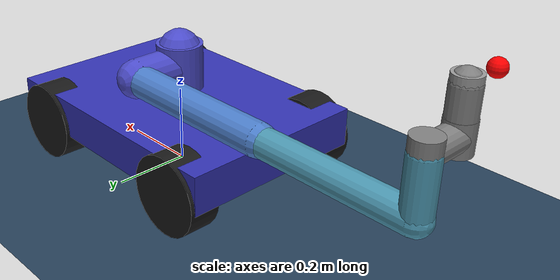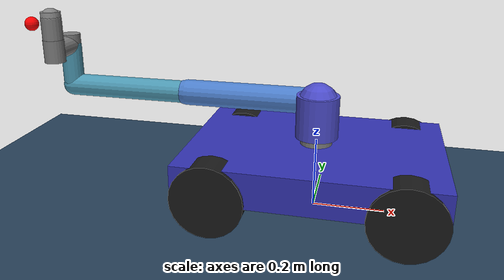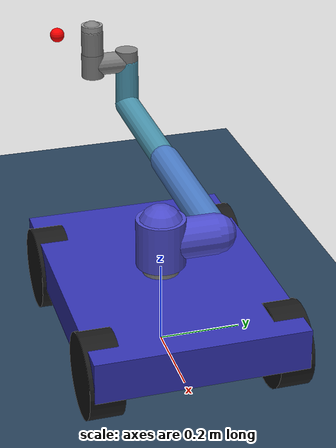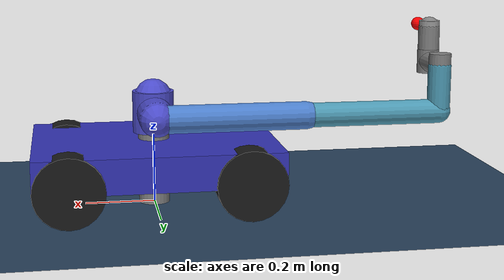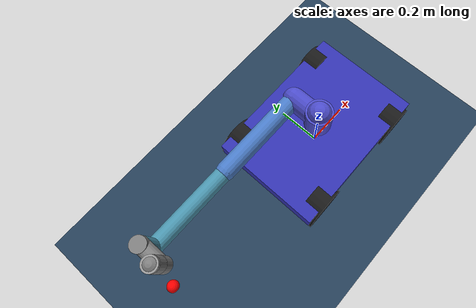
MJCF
<mujoco model="wheeled_ur5e">
  <compiler angle="radian"/>

  <option integrator="implicitfast"/>

  <visual>
    <global azimuth="120" elevation="-20"/>
    <headlight ambient="0.3 0.3 0.3" diffuse="0.6 0.6 0.6" specular="0 0 0"/>
    <map force="0.1" zfar="30"/>
    <rgba haze="0.15 0.25 0.35 1"/>
  </visual>

  <default>
    <joint limited="true"/>
    <geom contype="0" conaffinity="0" condim="1" solref="0.008"/>
    <general ctrllimited="true" biastype="affine" gainprm="400" biasprm="0 -400 -40"/>
  </default>

  <asset>
    <texture type="skybox" colorspace="auto" builtin="gradient" rgb1="0.3 0.5 0.7" rgb2="0 0 0" width="512" height="3072"/>
    <texture type="2d" colorspace="auto" name="groundplane" builtin="checker" mark="edge" rgb1="0.2 0.3 0.4" rgb2="0.1 0.2 0.3" markrgb="0.8 0.8 0.8" width="300" height="300"/>
    <material name="groundplane" texture="groundplane" texuniform="true" texrepeat="5 5" reflectance="0.2"/>
  </asset>

  <worldbody>
    <geom name="floor" size="0 0 0.05" type="plane" material="groundplane"/>
    <light pos="0 0 3.5" dir="0 0 -1" type="directional" diffuse="0.4 0.4 0.4" specular="0.1 0.1 0.1"/>
    <light pos="1.5 1.5 2.5" dir="-0.485071 -0.485071 -0.727607" diffuse="0.5 0.5 0.5"/>
    <body name="base_x_body">
      <inertial pos="0 0 0" mass="2" diaginertia="0.1 0.1 0.1"/>
      <joint name="base_x" pos="0 0 0" axis="1 0 0" type="slide" range="-3 3" damping="10"/>
      <body name="base_y_body">
        <inertial pos="0 0 0" mass="2" diaginertia="0.1 0.1 0.1"/>
        <joint name="base_y" pos="0 0 0" axis="0 1 0" type="slide" range="-3 3" damping="10"/>
        <body name="base_yaw_body">
          <inertial pos="0 0 0" mass="2" diaginertia="0.1 0.1 0.1"/>
          <joint name="base_yaw" pos="0 0 0" axis="0 0 1" range="-3.1416 3.1416" damping="5"/>
          <body name="chassis" pos="0 0 0.14">
            <geom size="0.35 0.25 0.05" type="box" mass="20" rgba="0.2 0.2 0.7 1"/>
            <geom size="0.1 0.04" pos="0.25 0.22 -0.04" quat="0.707105 0.707108 0 0" type="cylinder" mass="1" rgba="0.1 0.1 0.1 1"/>
            <geom size="0.1 0.04" pos="0.25 -0.22 -0.04" quat="0.707105 0.707108 0 0" type="cylinder" mass="1" rgba="0.1 0.1 0.1 1"/>
            <geom size="0.1 0.04" pos="-0.25 0.22 -0.04" quat="0.707105 0.707108 0 0" type="cylinder" mass="1" rgba="0.1 0.1 0.1 1"/>
            <geom size="0.1 0.04" pos="-0.25 -0.22 -0.04" quat="0.707105 0.707108 0 0" type="cylinder" mass="1" rgba="0.1 0.1 0.1 1"/>
          </body>
          <body name="base_z_body">
            <inertial pos="0 0 0.1" mass="2" diaginertia="0.05 0.05 0.05"/>
            <joint name="base_z" pos="0 0 0" axis="0 0 1" type="slide" range="0 0.5" damping="10"/>
            <geom size="0.045 0.135" pos="0 0 0.135" type="cylinder" mass="0"/>
            <body name="shoulder_link" pos="0 0 0.27">
              <joint name="shoulder_pan_joint" pos="0 0 0" axis="0 0 1" range="-6.2832 6.2832" armature="0.1" damping="1"/>
              <geom size="0.06 0.06" type="cylinder" mass="3.761" rgba="0.3 0.3 0.8 1"/>
              <geom size="0.055 0.02" pos="0 0 0.02" quat="0 1 0 0" type="capsule" mass="0" rgba="0.3 0.3 0.8 1"/>
              <geom size="0.05 0.0679" pos="0 0.0679 0" quat="0.707107 0.707107 0 0" type="capsule" mass="0" rgba="0.3 0.3 0.8 1"/>
              <body name="upper_arm_link" pos="0 0.1358 0">
                <joint name="shoulder_lift_joint" pos="0 0 0" axis="0 1 0" range="-6.2832 6.2832" armature="0.1" damping="1"/>
                <geom size="0.04 0.2125" pos="-0.2125 0 0" quat="0.707107 0 0.707107 0" type="capsule" mass="8.058" rgba="0.3 0.5 0.8 1"/>
                <body name="forearm_link" pos="-0.425 0 0">
                  <joint name="elbow_joint" pos="0 0 0" axis="0 1 0" range="-3.1416 3.1416" armature="0.1" damping="0.5"/>
                  <geom size="0.035 0.1961" pos="-0.1961 0 0" quat="0.707107 0 0.707107 0" type="capsule" mass="2.846" rgba="0.3 0.6 0.7 1"/>
                  <geom size="0.033 0.06665" pos="-0.3922 0 0.06665" quat="0 1 0 0" type="capsule" mass="0" rgba="0.3 0.6 0.7 1"/>
                  <body name="wrist_1_link" pos="-0.3922 0 0.1333">
                    <joint name="wrist_1_joint" pos="0 0 0" axis="0 1 0" range="-6.2832 6.2832" armature="0.01" damping="0.1"/>
                    <geom size="0.032 0.035" type="cylinder" mass="1.37"/>
                    <geom size="0.031 0.04985" pos="0 -0.04985 0" quat="0.707107 -0.707107 0 0" type="capsule" mass="0"/>
                    <body name="wrist_2_link" pos="0 -0.0997 0">
                      <joint name="wrist_2_joint" pos="0 0 0" axis="0 0 1" range="-6.2832 6.2832" armature="0.01" damping="0.1"/>
                      <geom size="0.032 0.035" type="cylinder" mass="1.37"/>
                      <geom size="0.031 0.0498" pos="0 0 0.0498" quat="0 1 0 0" type="capsule" mass="0"/>
                      <body name="wrist_3_link" pos="0 0 0.0996">
                        <joint name="wrist_3_joint" pos="0 0 0" axis="0 1 0" range="-6.2832 6.2832" armature="0.01" damping="0.1"/>
                        <geom size="0.03 0.02" type="cylinder" mass="0.195" rgba="0.6 0.6 0.6 1"/>
                        <site name="ee_site" pos="0 -0.0996 0" size="0.02" rgba="1 0 0 1"/>
                      </body>
                    </body>
                  </body>
                </body>
              </body>
            </body>
          </body>
        </body>
      </body>
    </body>
  </worldbody>

  <actuator>
    <general name="act_base_x" joint="base_x" ctrlrange="-3 3" gainprm="2000" biasprm="0 -2000 -200"/>
    <general name="act_base_y" joint="base_y" ctrlrange="-3 3" gainprm="2000" biasprm="0 -2000 -200"/>
    <general name="act_base_z" joint="base_z" ctrlrange="0 0.5" gainprm="35000" biasprm="0 -35000 -800"/>
    <general name="act_base_yaw" joint="base_yaw" ctrlrange="-3.1416 3.1416" gainprm="2000" biasprm="0 -2000 -200"/>
    <general name="act_shoulder_pan" joint="shoulder_pan_joint" ctrlrange="-6.2832 6.2832" gainprm="3000" biasprm="0 -3000 -200"/>
    <general name="act_shoulder_lift" joint="shoulder_lift_joint" ctrlrange="-6.2832 6.2832" gainprm="3000" biasprm="0 -3000 -200"/>
    <general name="act_elbow" joint="elbow_joint" ctrlrange="-3.1416 3.1416" gainprm="2000" biasprm="0 -2000 -150"/>
    <general name="act_wrist_1" joint="wrist_1_joint" ctrlrange="-6.2832 6.2832" gainprm="500" biasprm="0 -500 -50"/>
    <general name="act_wrist_2" joint="wrist_2_joint" ctrlrange="-6.2832 6.2832" gainprm="500" biasprm="0 -500 -50"/>
    <general name="act_wrist_3" joint="wrist_3_joint" ctrlrange="-6.2832 6.2832" gainprm="500" biasprm="0 -500 -50"/>
  </actuator>
</mujoco>
